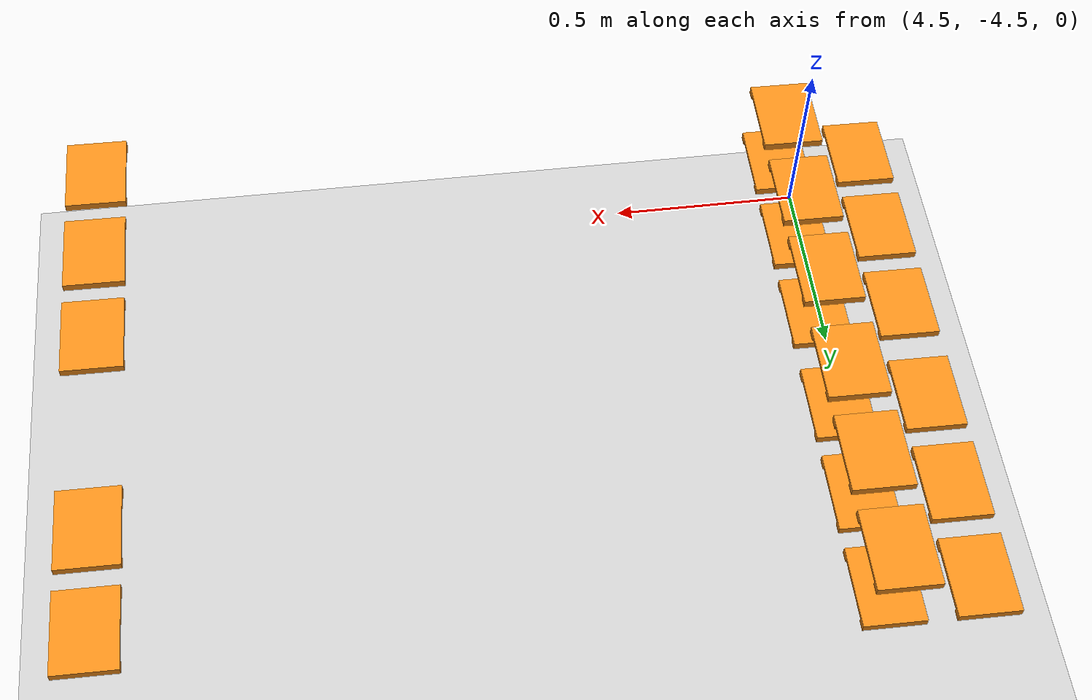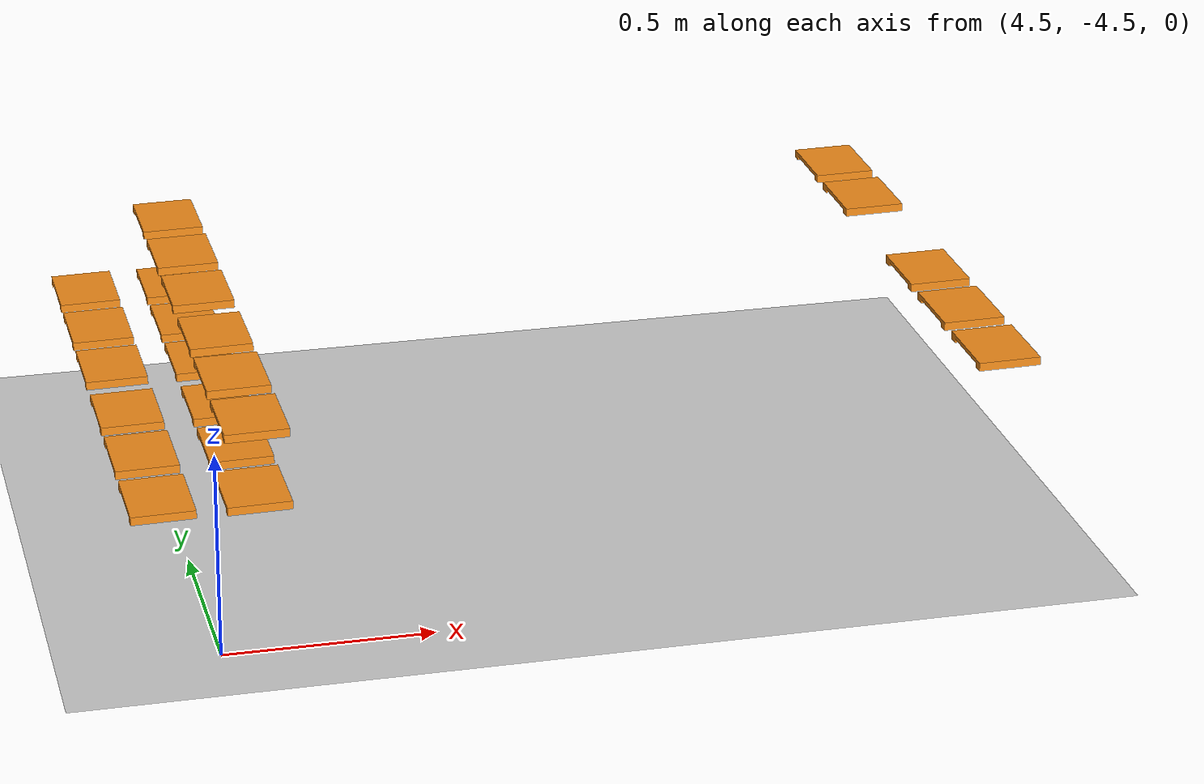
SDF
<sdf version="1.7">
 <world name="default">
  <model name="ground_plane">
   <static>1</static>
   <link name="link">
    <collision name="collision">
     <geometry><plane><normal>0 0 1</normal><size>100 100</size></plane></geometry>
     <surface>
      <contact><collide_bitmask>65535</collide_bitmask></contact>
      <friction><ode><mu>1</mu><mu2>1</mu2></ode></friction>
     </surface>
    </collision>
    <visual name="visual">
     <cast_shadows>0</cast_shadows>
     <geometry><plane><normal>0 0 1</normal><size>100 100</size></plane></geometry>
     <material>
      <script><uri>file://media/materials/scripts/gazebo.material</uri><name>Gazebo/Grey</name></script>
     </material>
    </visual>
   </link>
  </model>
  <model name="pallet_265">
   <pose>4.60365 -3.088 0.511036 -3e-06 -0.012382 5e-06</pose>
   <link name="link">
    <inertial>
     <pose>0 0 0 0 -0 1.571</pose>
     <inertia>
      <ixx>0.00220983</ixx>
      <ixy>0</ixy>
      <ixz>0</ixz>
      <iyy>0.00128087</iyy>
      <iyz>0</iyz>
      <izz>0.00244903</izz>
     </inertia>
     <mass>0.01</mass>
    </inertial>
    <visual name="visual1">
     <cast_shadows>0</cast_shadows>
     <geometry><mesh><uri>model://pallet/meshes/pallet.stl</uri></mesh></geometry>
     <material>
      <script><uri>file://media/materials/scripts/gazebo.material</uri><name>Gazebo/Orange</name></script>
      <shader type="pixel"><normal_map>__default__</normal_map></shader>
      <emissive>0 0 0 1</emissive>
     </material>
     <pose>0 0 -0 0 -0 1.571</pose>
    </visual>
    <collision name="collision_0">
     <pose>0 0 0 0 -0 1.571</pose>
     <geometry><mesh><uri>model://pallet/meshes/pallet.stl</uri></mesh></geometry>
     <surface>
      <friction>
       <ode><mu>1</mu><mu2>1</mu2><fdir1>0 0 0</fdir1><slip1>0</slip1><slip2>0</slip2></ode>
       <torsional>
        <coefficient>1</coefficient>
        <patch_radius>0</patch_radius>
        <surface_radius>0</surface_radius>
        <use_patch_radius>1</use_patch_radius>
        <ode><slip>0</slip></ode>
       </torsional>
      </friction>
      <bounce><restitution_coefficient>0</restitution_coefficient><threshold>1e+06</threshold></bounce>
      <contact>
       <collide_without_contact>0</collide_without_contact>
       <collide_without_contact_bitmask>1</collide_without_contact_bitmask>
       <collide_bitmask>1</collide_bitmask>
       <ode>
        <soft_cfm>0</soft_cfm>
        <soft_erp>0.2</soft_erp>
        <kp>1e+13</kp>
        <kd>1</kd>
        <max_vel>0.01</max_vel>
        <min_depth>0</min_depth>
       </ode>
       <bullet>
        <split_impulse>1</split_impulse>
        <split_impulse_penetration_threshold>-0.01</split_impulse_penetration_threshold>
        <soft_cfm>0</soft_cfm>
        <soft_erp>0.2</soft_erp>
        <kp>1e+13</kp>
        <kd>1</kd>
       </bullet>
      </contact>
     </surface>
    </collision>
   </link>
   <static>0</static>
  </model>
  <model name="pallet_266">
   <pose>4.60365 -3.338 0.511033 4.1e-05 -0.012377 6e-06</pose>
   <link name="link">
    <inertial>
     <pose>0 0 0 0 -0 1.571</pose>
     <inertia>
      <ixx>0.00220983</ixx>
      <ixy>0</ixy>
      <ixz>0</ixz>
      <iyy>0.00128087</iyy>
      <iyz>0</iyz>
      <izz>0.00244903</izz>
     </inertia>
     <mass>0.01</mass>
    </inertial>
    <visual name="visual1">
     <cast_shadows>0</cast_shadows>
     <geometry><mesh><uri>model://pallet/meshes/pallet.stl</uri></mesh></geometry>
     <material>
      <script><uri>file://media/materials/scripts/gazebo.material</uri><name>Gazebo/Orange</name></script>
      <shader type="pixel"><normal_map>__default__</normal_map></shader>
      <emissive>0 0 0 1</emissive>
     </material>
     <pose>0 0 -0 0 -0 1.571</pose>
    </visual>
    <collision name="collision_0">
     <pose>0 0 0 0 -0 1.571</pose>
     <geometry><mesh><uri>model://pallet/meshes/pallet.stl</uri></mesh></geometry>
     <surface>
      <friction>
       <ode><mu>1</mu><mu2>1</mu2><fdir1>0 0 0</fdir1><slip1>0</slip1><slip2>0</slip2></ode>
       <torsional>
        <coefficient>1</coefficient>
        <patch_radius>0</patch_radius>
        <surface_radius>0</surface_radius>
        <use_patch_radius>1</use_patch_radius>
        <ode><slip>0</slip></ode>
       </torsional>
      </friction>
      <bounce><restitution_coefficient>0</restitution_coefficient><threshold>1e+06</threshold></bounce>
      <contact>
       <collide_without_contact>0</collide_without_contact>
       <collide_without_contact_bitmask>1</collide_without_contact_bitmask>
       <collide_bitmask>1</collide_bitmask>
       <ode>
        <soft_cfm>0</soft_cfm>
        <soft_erp>0.2</soft_erp>
        <kp>1e+13</kp>
        <kd>1</kd>
        <max_vel>0.01</max_vel>
        <min_depth>0</min_depth>
       </ode>
       <bullet>
        <split_impulse>1</split_impulse>
        <split_impulse_penetration_threshold>-0.01</split_impulse_penetration_threshold>
        <soft_cfm>0</soft_cfm>
        <soft_erp>0.2</soft_erp>
        <kp>1e+13</kp>
        <kd>1</kd>
       </bullet>
      </contact>
     </surface>
    </collision>
   </link>
   <static>0</static>
  </model>
  <model name="pallet_267">
   <pose>4.60365 -3.588 0.511032 3.8e-05 -0.012376 4e-06</pose>
   <link name="link">
    <inertial>
     <pose>0 0 0 0 -0 1.571</pose>
     <inertia>
      <ixx>0.00220983</ixx>
      <ixy>0</ixy>
      <ixz>0</ixz>
      <iyy>0.00128087</iyy>
      <iyz>0</iyz>
      <izz>0.00244903</izz>
     </inertia>
     <mass>0.01</mass>
    </inertial>
    <visual name="visual1">
     <cast_shadows>0</cast_shadows>
     <geometry><mesh><uri>model://pallet/meshes/pallet.stl</uri></mesh></geometry>
     <material>
      <script><uri>file://media/materials/scripts/gazebo.material</uri><name>Gazebo/Orange</name></script>
      <shader type="pixel"><normal_map>__default__</normal_map></shader>
      <emissive>0 0 0 1</emissive>
     </material>
     <pose>0 0 -0 0 -0 1.571</pose>
    </visual>
    <collision name="collision_0">
     <pose>0 0 0 0 -0 1.571</pose>
     <geometry><mesh><uri>model://pallet/meshes/pallet.stl</uri></mesh></geometry>
     <surface>
      <friction>
       <ode><mu>1</mu><mu2>1</mu2><fdir1>0 0 0</fdir1><slip1>0</slip1><slip2>0</slip2></ode>
       <torsional>
        <coefficient>1</coefficient>
        <patch_radius>0</patch_radius>
        <surface_radius>0</surface_radius>
        <use_patch_radius>1</use_patch_radius>
        <ode><slip>0</slip></ode>
       </torsional>
      </friction>
      <bounce><restitution_coefficient>0</restitution_coefficient><threshold>1e+06</threshold></bounce>
      <contact>
       <collide_without_contact>0</collide_without_contact>
       <collide_without_contact_bitmask>1</collide_without_contact_bitmask>
       <collide_bitmask>1</collide_bitmask>
       <ode>
        <soft_cfm>0</soft_cfm>
        <soft_erp>0.2</soft_erp>
        <kp>1e+13</kp>
        <kd>1</kd>
        <max_vel>0.01</max_vel>
        <min_depth>0</min_depth>
       </ode>
       <bullet>
        <split_impulse>1</split_impulse>
        <split_impulse_penetration_threshold>-0.01</split_impulse_penetration_threshold>
        <soft_cfm>0</soft_cfm>
        <soft_erp>0.2</soft_erp>
        <kp>1e+13</kp>
        <kd>1</kd>
       </bullet>
      </contact>
     </surface>
    </collision>
   </link>
   <static>0</static>
  </model>
  <model name="pallet_268">
   <pose>4.60365 -3.8625 0.511034 3e-06 -0.012381 2e-06</pose>
   <link name="link">
    <inertial>
     <pose>0 0 0 0 -0 1.571</pose>
     <inertia>
      <ixx>0.00220983</ixx>
      <ixy>0</ixy>
      <ixz>0</ixz>
      <iyy>0.00128087</iyy>
      <iyz>0</iyz>
      <izz>0.00244903</izz>
     </inertia>
     <mass>0.01</mass>
    </inertial>
    <visual name="visual1">
     <cast_shadows>0</cast_shadows>
     <geometry><mesh><uri>model://pallet/meshes/pallet.stl</uri></mesh></geometry>
     <material>
      <script><uri>file://media/materials/scripts/gazebo.material</uri><name>Gazebo/Orange</name></script>
      <shader type="pixel"><normal_map>__default__</normal_map></shader>
      <emissive>0 0 0 1</emissive>
     </material>
     <pose>0 0 -0 0 -0 1.571</pose>
    </visual>
    <collision name="collision_0">
     <pose>0 0 0 0 -0 1.571</pose>
     <geometry><mesh><uri>model://pallet/meshes/pallet.stl</uri></mesh></geometry>
     <surface>
      <friction>
       <ode><mu>1</mu><mu2>1</mu2><fdir1>0 0 0</fdir1><slip1>0</slip1><slip2>0</slip2></ode>
       <torsional>
        <coefficient>1</coefficient>
        <patch_radius>0</patch_radius>
        <surface_radius>0</surface_radius>
        <use_patch_radius>1</use_patch_radius>
        <ode><slip>0</slip></ode>
       </torsional>
      </friction>
      <bounce><restitution_coefficient>0</restitution_coefficient><threshold>1e+06</threshold></bounce>
      <contact>
       <collide_without_contact>0</collide_without_contact>
       <collide_without_contact_bitmask>1</collide_without_contact_bitmask>
       <collide_bitmask>1</collide_bitmask>
       <ode>
        <soft_cfm>0</soft_cfm>
        <soft_erp>0.2</soft_erp>
        <kp>1e+13</kp>
        <kd>1</kd>
        <max_vel>0.01</max_vel>
        <min_depth>0</min_depth>
       </ode>
       <bullet>
        <split_impulse>1</split_impulse>
        <split_impulse_penetration_threshold>-0.01</split_impulse_penetration_threshold>
        <soft_cfm>0</soft_cfm>
        <soft_erp>0.2</soft_erp>
        <kp>1e+13</kp>
        <kd>1</kd>
       </bullet>
      </contact>
     </surface>
    </collision>
   </link>
   <static>0</static>
  </model>
  <model name="pallet_269">
   <pose>4.60365 -4.1125 0.511032 2.7e-05 -0.012376 2e-06</pose>
   <link name="link">
    <inertial>
     <pose>0 0 0 0 -0 1.571</pose>
     <inertia>
      <ixx>0.00220983</ixx>
      <ixy>0</ixy>
      <ixz>0</ixz>
      <iyy>0.00128087</iyy>
      <iyz>0</iyz>
      <izz>0.00244903</izz>
     </inertia>
     <mass>0.01</mass>
    </inertial>
    <visual name="visual1">
     <cast_shadows>0</cast_shadows>
     <geometry><mesh><uri>model://pallet/meshes/pallet.stl</uri></mesh></geometry>
     <material>
      <script><uri>file://media/materials/scripts/gazebo.material</uri><name>Gazebo/Orange</name></script>
      <shader type="pixel"><normal_map>__default__</normal_map></shader>
      <emissive>0 0 0 1</emissive>
     </material>
     <pose>0 0 -0 0 -0 1.571</pose>
    </visual>
    <collision name="collision_0">
     <pose>0 0 0 0 -0 1.571</pose>
     <geometry><mesh><uri>model://pallet/meshes/pallet.stl</uri></mesh></geometry>
     <surface>
      <friction>
       <ode><mu>1</mu><mu2>1</mu2><fdir1>0 0 0</fdir1><slip1>0</slip1><slip2>0</slip2></ode>
       <torsional>
        <coefficient>1</coefficient>
        <patch_radius>0</patch_radius>
        <surface_radius>0</surface_radius>
        <use_patch_radius>1</use_patch_radius>
        <ode><slip>0</slip></ode>
       </torsional>
      </friction>
      <bounce><restitution_coefficient>0</restitution_coefficient><threshold>1e+06</threshold></bounce>
      <contact>
       <collide_without_contact>0</collide_without_contact>
       <collide_without_contact_bitmask>1</collide_without_contact_bitmask>
       <collide_bitmask>1</collide_bitmask>
       <ode>
        <soft_cfm>0</soft_cfm>
        <soft_erp>0.2</soft_erp>
        <kp>1e+13</kp>
        <kd>1</kd>
        <max_vel>0.01</max_vel>
        <min_depth>0</min_depth>
       </ode>
       <bullet>
        <split_impulse>1</split_impulse>
        <split_impulse_penetration_threshold>-0.01</split_impulse_penetration_threshold>
        <soft_cfm>0</soft_cfm>
        <soft_erp>0.2</soft_erp>
        <kp>1e+13</kp>
        <kd>1</kd>
       </bullet>
      </contact>
     </surface>
    </collision>
   </link>
   <static>0</static>
  </model>
  <model name="pallet_270">
   <pose>4.60366 -4.3625 0.511031 2e-05 -0.012377 9e-06</pose>
   <link name="link">
    <inertial>
     <pose>0 0 0 0 -0 1.571</pose>
     <inertia>
      <ixx>0.00220983</ixx>
      <ixy>0</ixy>
      <ixz>0</ixz>
      <iyy>0.00128087</iyy>
      <iyz>0</iyz>
      <izz>0.00244903</izz>
     </inertia>
     <mass>0.01</mass>
    </inertial>
    <visual name="visual1">
     <cast_shadows>0</cast_shadows>
     <geometry><mesh><uri>model://pallet/meshes/pallet.stl</uri></mesh></geometry>
     <material>
      <script><uri>file://media/materials/scripts/gazebo.material</uri><name>Gazebo/Orange</name></script>
      <shader type="pixel"><normal_map>__default__</normal_map></shader>
      <emissive>0 0 0 1</emissive>
     </material>
     <pose>0 0 -0 0 -0 1.571</pose>
    </visual>
    <collision name="collision_0">
     <pose>0 0 0 0 -0 1.571</pose>
     <geometry><mesh><uri>model://pallet/meshes/pallet.stl</uri></mesh></geometry>
     <surface>
      <friction>
       <ode><mu>1</mu><mu2>1</mu2><fdir1>0 0 0</fdir1><slip1>0</slip1><slip2>0</slip2></ode>
       <torsional>
        <coefficient>1</coefficient>
        <patch_radius>0</patch_radius>
        <surface_radius>0</surface_radius>
        <use_patch_radius>1</use_patch_radius>
        <ode><slip>0</slip></ode>
       </torsional>
      </friction>
      <bounce><restitution_coefficient>0</restitution_coefficient><threshold>1e+06</threshold></bounce>
      <contact>
       <collide_without_contact>0</collide_without_contact>
       <collide_without_contact_bitmask>1</collide_without_contact_bitmask>
       <collide_bitmask>1</collide_bitmask>
       <ode>
        <soft_cfm>0</soft_cfm>
        <soft_erp>0.2</soft_erp>
        <kp>1e+13</kp>
        <kd>1</kd>
        <max_vel>0.01</max_vel>
        <min_depth>0</min_depth>
       </ode>
       <bullet>
        <split_impulse>1</split_impulse>
        <split_impulse_penetration_threshold>-0.01</split_impulse_penetration_threshold>
        <soft_cfm>0</soft_cfm>
        <soft_erp>0.2</soft_erp>
        <kp>1e+13</kp>
        <kd>1</kd>
       </bullet>
      </contact>
     </surface>
    </collision>
   </link>
   <static>0</static>
  </model>
  <model name="pallet_289">
   <pose>4.38555 -3.088 0.330971 5e-06 -0.013351 -5e-06</pose>
   <link name="link">
    <inertial>
     <pose>0 0 0 0 -0 1.571</pose>
     <inertia>
      <ixx>0.00220983</ixx>
      <ixy>0</ixy>
      <ixz>0</ixz>
      <iyy>0.00128087</iyy>
      <iyz>0</iyz>
      <izz>0.00244903</izz>
     </inertia>
     <mass>0.01</mass>
    </inertial>
    <visual name="visual1">
     <cast_shadows>0</cast_shadows>
     <geometry><mesh><uri>model://pallet/meshes/pallet.stl</uri></mesh></geometry>
     <material>
      <script><uri>file://media/materials/scripts/gazebo.material</uri><name>Gazebo/Orange</name></script>
      <shader type="pixel"><normal_map>__default__</normal_map></shader>
      <emissive>0 0 0 1</emissive>
     </material>
     <pose>0 0 -0 0 -0 1.571</pose>
    </visual>
    <collision name="collision_0">
     <pose>0 0 0 0 -0 1.571</pose>
     <geometry><mesh><uri>model://pallet/meshes/pallet.stl</uri></mesh></geometry>
     <surface>
      <friction>
       <ode><mu>1</mu><mu2>1</mu2><fdir1>0 0 0</fdir1><slip1>0</slip1><slip2>0</slip2></ode>
       <torsional>
        <coefficient>1</coefficient>
        <patch_radius>0</patch_radius>
        <surface_radius>0</surface_radius>
        <use_patch_radius>1</use_patch_radius>
        <ode><slip>0</slip></ode>
       </torsional>
      </friction>
      <bounce><restitution_coefficient>0</restitution_coefficient><threshold>1e+06</threshold></bounce>
      <contact>
       <collide_without_contact>0</collide_without_contact>
       <collide_without_contact_bitmask>1</collide_without_contact_bitmask>
       <collide_bitmask>1</collide_bitmask>
       <ode>
        <soft_cfm>0</soft_cfm>
        <soft_erp>0.2</soft_erp>
        <kp>1e+13</kp>
        <kd>1</kd>
        <max_vel>0.01</max_vel>
        <min_depth>0</min_depth>
       </ode>
       <bullet>
        <split_impulse>1</split_impulse>
        <split_impulse_penetration_threshold>-0.01</split_impulse_penetration_threshold>
        <soft_cfm>0</soft_cfm>
        <soft_erp>0.2</soft_erp>
        <kp>1e+13</kp>
        <kd>1</kd>
       </bullet>
      </contact>
     </surface>
    </collision>
   </link>
   <static>0</static>
  </model>
  <model name="pallet_290">
   <pose>4.38555 -3.338 0.330969 3.9e-05 -0.013348 3e-06</pose>
   <link name="link">
    <inertial>
     <pose>0 0 0 0 -0 1.571</pose>
     <inertia>
      <ixx>0.00220983</ixx>
      <ixy>0</ixy>
      <ixz>0</ixz>
      <iyy>0.00128087</iyy>
      <iyz>0</iyz>
      <izz>0.00244903</izz>
     </inertia>
     <mass>0.01</mass>
    </inertial>
    <visual name="visual1">
     <cast_shadows>0</cast_shadows>
     <geometry><mesh><uri>model://pallet/meshes/pallet.stl</uri></mesh></geometry>
     <material>
      <script><uri>file://media/materials/scripts/gazebo.material</uri><name>Gazebo/Orange</name></script>
      <shader type="pixel"><normal_map>__default__</normal_map></shader>
      <emissive>0 0 0 1</emissive>
     </material>
     <pose>0 0 -0 0 -0 1.571</pose>
    </visual>
    <collision name="collision_0">
     <pose>0 0 0 0 -0 1.571</pose>
     <geometry><mesh><uri>model://pallet/meshes/pallet.stl</uri></mesh></geometry>
     <surface>
      <friction>
       <ode><mu>1</mu><mu2>1</mu2><fdir1>0 0 0</fdir1><slip1>0</slip1><slip2>0</slip2></ode>
       <torsional>
        <coefficient>1</coefficient>
        <patch_radius>0</patch_radius>
        <surface_radius>0</surface_radius>
        <use_patch_radius>1</use_patch_radius>
        <ode><slip>0</slip></ode>
       </torsional>
      </friction>
      <bounce><restitution_coefficient>0</restitution_coefficient><threshold>1e+06</threshold></bounce>
      <contact>
       <collide_without_contact>0</collide_without_contact>
       <collide_without_contact_bitmask>1</collide_without_contact_bitmask>
       <collide_bitmask>1</collide_bitmask>
       <ode>
        <soft_cfm>0</soft_cfm>
        <soft_erp>0.2</soft_erp>
        <kp>1e+13</kp>
        <kd>1</kd>
        <max_vel>0.01</max_vel>
        <min_depth>0</min_depth>
       </ode>
       <bullet>
        <split_impulse>1</split_impulse>
        <split_impulse_penetration_threshold>-0.01</split_impulse_penetration_threshold>
        <soft_cfm>0</soft_cfm>
        <soft_erp>0.2</soft_erp>
        <kp>1e+13</kp>
        <kd>1</kd>
       </bullet>
      </contact>
     </surface>
    </collision>
   </link>
   <static>0</static>
  </model>
  <model name="pallet_291">
   <pose>4.38555 -3.588 0.330968 4.8e-05 -0.013348 5e-06</pose>
   <link name="link">
    <inertial>
     <pose>0 0 0 0 -0 1.571</pose>
     <inertia>
      <ixx>0.00220983</ixx>
      <ixy>0</ixy>
      <ixz>0</ixz>
      <iyy>0.00128087</iyy>
      <iyz>0</iyz>
      <izz>0.00244903</izz>
     </inertia>
     <mass>0.01</mass>
    </inertial>
    <visual name="visual1">
     <cast_shadows>0</cast_shadows>
     <geometry><mesh><uri>model://pallet/meshes/pallet.stl</uri></mesh></geometry>
     <material>
      <script><uri>file://media/materials/scripts/gazebo.material</uri><name>Gazebo/Orange</name></script>
      <shader type="pixel"><normal_map>__default__</normal_map></shader>
      <emissive>0 0 0 1</emissive>
     </material>
     <pose>0 0 -0 0 -0 1.571</pose>
    </visual>
    <collision name="collision_0">
     <pose>0 0 0 0 -0 1.571</pose>
     <geometry><mesh><uri>model://pallet/meshes/pallet.stl</uri></mesh></geometry>
     <surface>
      <friction>
       <ode><mu>1</mu><mu2>1</mu2><fdir1>0 0 0</fdir1><slip1>0</slip1><slip2>0</slip2></ode>
       <torsional>
        <coefficient>1</coefficient>
        <patch_radius>0</patch_radius>
        <surface_radius>0</surface_radius>
        <use_patch_radius>1</use_patch_radius>
        <ode><slip>0</slip></ode>
       </torsional>
      </friction>
      <bounce><restitution_coefficient>0</restitution_coefficient><threshold>1e+06</threshold></bounce>
      <contact>
       <collide_without_contact>0</collide_without_contact>
       <collide_without_contact_bitmask>1</collide_without_contact_bitmask>
       <collide_bitmask>1</collide_bitmask>
       <ode>
        <soft_cfm>0</soft_cfm>
        <soft_erp>0.2</soft_erp>
        <kp>1e+13</kp>
        <kd>1</kd>
        <max_vel>0.01</max_vel>
        <min_depth>0</min_depth>
       </ode>
       <bullet>
        <split_impulse>1</split_impulse>
        <split_impulse_penetration_threshold>-0.01</split_impulse_penetration_threshold>
        <soft_cfm>0</soft_cfm>
        <soft_erp>0.2</soft_erp>
        <kp>1e+13</kp>
        <kd>1</kd>
       </bullet>
      </contact>
     </surface>
    </collision>
   </link>
   <static>0</static>
  </model>
  <model name="pallet_292">
   <pose>4.38556 -3.8625 0.33097 6e-06 -0.013355 3e-06</pose>
   <link name="link">
    <inertial>
     <pose>0 0 0 0 -0 1.571</pose>
     <inertia>
      <ixx>0.00220983</ixx>
      <ixy>0</ixy>
      <ixz>0</ixz>
      <iyy>0.00128087</iyy>
      <iyz>0</iyz>
      <izz>0.00244903</izz>
     </inertia>
     <mass>0.01</mass>
    </inertial>
    <visual name="visual1">
     <cast_shadows>0</cast_shadows>
     <geometry><mesh><uri>model://pallet/meshes/pallet.stl</uri></mesh></geometry>
     <material>
      <script><uri>file://media/materials/scripts/gazebo.material</uri><name>Gazebo/Orange</name></script>
      <shader type="pixel"><normal_map>__default__</normal_map></shader>
      <emissive>0 0 0 1</emissive>
     </material>
     <pose>0 0 -0 0 -0 1.571</pose>
    </visual>
    <collision name="collision_0">
     <pose>0 0 0 0 -0 1.571</pose>
     <geometry><mesh><uri>model://pallet/meshes/pallet.stl</uri></mesh></geometry>
     <surface>
      <friction>
       <ode><mu>1</mu><mu2>1</mu2><fdir1>0 0 0</fdir1><slip1>0</slip1><slip2>0</slip2></ode>
       <torsional>
        <coefficient>1</coefficient>
        <patch_radius>0</patch_radius>
        <surface_radius>0</surface_radius>
        <use_patch_radius>1</use_patch_radius>
        <ode><slip>0</slip></ode>
       </torsional>
      </friction>
      <bounce><restitution_coefficient>0</restitution_coefficient><threshold>1e+06</threshold></bounce>
      <contact>
       <collide_without_contact>0</collide_without_contact>
       <collide_without_contact_bitmask>1</collide_without_contact_bitmask>
       <collide_bitmask>1</collide_bitmask>
       <ode>
        <soft_cfm>0</soft_cfm>
        <soft_erp>0.2</soft_erp>
        <kp>1e+13</kp>
        <kd>1</kd>
        <max_vel>0.01</max_vel>
        <min_depth>0</min_depth>
       </ode>
       <bullet>
        <split_impulse>1</split_impulse>
        <split_impulse_penetration_threshold>-0.01</split_impulse_penetration_threshold>
        <soft_cfm>0</soft_cfm>
        <soft_erp>0.2</soft_erp>
        <kp>1e+13</kp>
        <kd>1</kd>
       </bullet>
      </contact>
     </surface>
    </collision>
   </link>
   <static>0</static>
  </model>
  <model name="pallet_293">
   <pose>4.38556 -4.1125 0.330968 3e-05 -0.013348 5e-06</pose>
   <link name="link">
    <inertial>
     <pose>0 0 0 0 -0 1.571</pose>
     <inertia>
      <ixx>0.00220983</ixx>
      <ixy>0</ixy>
      <ixz>0</ixz>
      <iyy>0.00128087</iyy>
      <iyz>0</iyz>
      <izz>0.00244903</izz>
     </inertia>
     <mass>0.01</mass>
    </inertial>
    <visual name="visual1">
     <cast_shadows>0</cast_shadows>
     <geometry><mesh><uri>model://pallet/meshes/pallet.stl</uri></mesh></geometry>
     <material>
      <script><uri>file://media/materials/scripts/gazebo.material</uri><name>Gazebo/Orange</name></script>
      <shader type="pixel"><normal_map>__default__</normal_map></shader>
      <emissive>0 0 0 1</emissive>
     </material>
     <pose>0 0 -0 0 -0 1.571</pose>
    </visual>
    <collision name="collision_0">
     <pose>0 0 0 0 -0 1.571</pose>
     <geometry><mesh><uri>model://pallet/meshes/pallet.stl</uri></mesh></geometry>
     <surface>
      <friction>
       <ode><mu>1</mu><mu2>1</mu2><fdir1>0 0 0</fdir1><slip1>0</slip1><slip2>0</slip2></ode>
       <torsional>
        <coefficient>1</coefficient>
        <patch_radius>0</patch_radius>
        <surface_radius>0</surface_radius>
        <use_patch_radius>1</use_patch_radius>
        <ode><slip>0</slip></ode>
       </torsional>
      </friction>
      <bounce><restitution_coefficient>0</restitution_coefficient><threshold>1e+06</threshold></bounce>
      <contact>
       <collide_without_contact>0</collide_without_contact>
       <collide_without_contact_bitmask>1</collide_without_contact_bitmask>
       <collide_bitmask>1</collide_bitmask>
       <ode>
        <soft_cfm>0</soft_cfm>
        <soft_erp>0.2</soft_erp>
        <kp>1e+13</kp>
        <kd>1</kd>
        <max_vel>0.01</max_vel>
        <min_depth>0</min_depth>
       </ode>
       <bullet>
        <split_impulse>1</split_impulse>
        <split_impulse_penetration_threshold>-0.01</split_impulse_penetration_threshold>
        <soft_cfm>0</soft_cfm>
        <soft_erp>0.2</soft_erp>
        <kp>1e+13</kp>
        <kd>1</kd>
       </bullet>
      </contact>
     </surface>
    </collision>
   </link>
   <static>0</static>
  </model>
  <model name="pallet_294">
   <pose>4.38556 -4.3625 0.330967 2.8e-05 -0.013348 7e-06</pose>
   <link name="link">
    <inertial>
     <pose>0 0 0 0 -0 1.571</pose>
     <inertia>
      <ixx>0.00220983</ixx>
      <ixy>0</ixy>
      <ixz>0</ixz>
      <iyy>0.00128087</iyy>
      <iyz>0</iyz>
      <izz>0.00244903</izz>
     </inertia>
     <mass>0.01</mass>
    </inertial>
    <visual name="visual1">
     <cast_shadows>0</cast_shadows>
     <geometry><mesh><uri>model://pallet/meshes/pallet.stl</uri></mesh></geometry>
     <material>
      <script><uri>file://media/materials/scripts/gazebo.material</uri><name>Gazebo/Orange</name></script>
      <shader type="pixel"><normal_map>__default__</normal_map></shader>
      <emissive>0 0 0 1</emissive>
     </material>
     <pose>0 0 -0 0 -0 1.571</pose>
    </visual>
    <collision name="collision_0">
     <pose>0 0 0 0 -0 1.571</pose>
     <geometry><mesh><uri>model://pallet/meshes/pallet.stl</uri></mesh></geometry>
     <surface>
      <friction>
       <ode><mu>1</mu><mu2>1</mu2><fdir1>0 0 0</fdir1><slip1>0</slip1><slip2>0</slip2></ode>
       <torsional>
        <coefficient>1</coefficient>
        <patch_radius>0</patch_radius>
        <surface_radius>0</surface_radius>
        <use_patch_radius>1</use_patch_radius>
        <ode><slip>0</slip></ode>
       </torsional>
      </friction>
      <bounce><restitution_coefficient>0</restitution_coefficient><threshold>1e+06</threshold></bounce>
      <contact>
       <collide_without_contact>0</collide_without_contact>
       <collide_without_contact_bitmask>1</collide_without_contact_bitmask>
       <collide_bitmask>1</collide_bitmask>
       <ode>
        <soft_cfm>0</soft_cfm>
        <soft_erp>0.2</soft_erp>
        <kp>1e+13</kp>
        <kd>1</kd>
        <max_vel>0.01</max_vel>
        <min_depth>0</min_depth>
       </ode>
       <bullet>
        <split_impulse>1</split_impulse>
        <split_impulse_penetration_threshold>-0.01</split_impulse_penetration_threshold>
        <soft_cfm>0</soft_cfm>
        <soft_erp>0.2</soft_erp>
        <kp>1e+13</kp>
        <kd>1</kd>
       </bullet>
      </contact>
     </surface>
    </collision>
   </link>
   <static>0</static>
  </model>
  <model name="pallet_301">
   <pose>4.60588 -3.088 0.331044 3e-06 -0.012384 -4e-06</pose>
   <link name="link">
    <inertial>
     <pose>0 0 0 0 -0 1.571</pose>
     <inertia>
      <ixx>0.00220983</ixx>
      <ixy>0</ixy>
      <ixz>0</ixz>
      <iyy>0.00128087</iyy>
      <iyz>0</iyz>
      <izz>0.00244903</izz>
     </inertia>
     <mass>0.01</mass>
    </inertial>
    <visual name="visual1">
     <cast_shadows>0</cast_shadows>
     <geometry><mesh><uri>model://pallet/meshes/pallet.stl</uri></mesh></geometry>
     <material>
      <script><uri>file://media/materials/scripts/gazebo.material</uri><name>Gazebo/Orange</name></script>
      <shader type="pixel"><normal_map>__default__</normal_map></shader>
      <emissive>0 0 0 1</emissive>
     </material>
     <pose>0 0 -0 0 -0 1.571</pose>
    </visual>
    <collision name="collision_0">
     <pose>0 0 0 0 -0 1.571</pose>
     <geometry><mesh><uri>model://pallet/meshes/pallet.stl</uri></mesh></geometry>
     <surface>
      <friction>
       <ode><mu>1</mu><mu2>1</mu2><fdir1>0 0 0</fdir1><slip1>0</slip1><slip2>0</slip2></ode>
       <torsional>
        <coefficient>1</coefficient>
        <patch_radius>0</patch_radius>
        <surface_radius>0</surface_radius>
        <use_patch_radius>1</use_patch_radius>
        <ode><slip>0</slip></ode>
       </torsional>
      </friction>
      <bounce><restitution_coefficient>0</restitution_coefficient><threshold>1e+06</threshold></bounce>
      <contact>
       <collide_without_contact>0</collide_without_contact>
       <collide_without_contact_bitmask>1</collide_without_contact_bitmask>
       <collide_bitmask>1</collide_bitmask>
       <ode>
        <soft_cfm>0</soft_cfm>
        <soft_erp>0.2</soft_erp>
        <kp>1e+13</kp>
        <kd>1</kd>
        <max_vel>0.01</max_vel>
        <min_depth>0</min_depth>
       </ode>
       <bullet>
        <split_impulse>1</split_impulse>
        <split_impulse_penetration_threshold>-0.01</split_impulse_penetration_threshold>
        <soft_cfm>0</soft_cfm>
        <soft_erp>0.2</soft_erp>
        <kp>1e+13</kp>
        <kd>1</kd>
       </bullet>
      </contact>
     </surface>
    </collision>
   </link>
   <static>0</static>
  </model>
  <model name="pallet_302">
   <pose>4.60588 -3.338 0.331047 3.9e-05 -0.012378 8e-06</pose>
   <link name="link">
    <inertial>
     <pose>0 0 0 0 -0 1.571</pose>
     <inertia>
      <ixx>0.00220983</ixx>
      <ixy>0</ixy>
      <ixz>0</ixz>
      <iyy>0.00128087</iyy>
      <iyz>0</iyz>
      <izz>0.00244903</izz>
     </inertia>
     <mass>0.01</mass>
    </inertial>
    <visual name="visual1">
     <cast_shadows>0</cast_shadows>
     <geometry><mesh><uri>model://pallet/meshes/pallet.stl</uri></mesh></geometry>
     <material>
      <script><uri>file://media/materials/scripts/gazebo.material</uri><name>Gazebo/Orange</name></script>
      <shader type="pixel"><normal_map>__default__</normal_map></shader>
      <emissive>0 0 0 1</emissive>
     </material>
     <pose>0 0 -0 0 -0 1.571</pose>
    </visual>
    <collision name="collision_0">
     <pose>0 0 0 0 -0 1.571</pose>
     <geometry><mesh><uri>model://pallet/meshes/pallet.stl</uri></mesh></geometry>
     <surface>
      <friction>
       <ode><mu>1</mu><mu2>1</mu2><fdir1>0 0 0</fdir1><slip1>0</slip1><slip2>0</slip2></ode>
       <torsional>
        <coefficient>1</coefficient>
        <patch_radius>0</patch_radius>
        <surface_radius>0</surface_radius>
        <use_patch_radius>1</use_patch_radius>
        <ode><slip>0</slip></ode>
       </torsional>
      </friction>
      <bounce><restitution_coefficient>0</restitution_coefficient><threshold>1e+06</threshold></bounce>
      <contact>
       <collide_without_contact>0</collide_without_contact>
       <collide_without_contact_bitmask>1</collide_without_contact_bitmask>
       <collide_bitmask>1</collide_bitmask>
       <ode>
        <soft_cfm>0</soft_cfm>
        <soft_erp>0.2</soft_erp>
        <kp>1e+13</kp>
        <kd>1</kd>
        <max_vel>0.01</max_vel>
        <min_depth>0</min_depth>
       </ode>
       <bullet>
        <split_impulse>1</split_impulse>
        <split_impulse_penetration_threshold>-0.01</split_impulse_penetration_threshold>
        <soft_cfm>0</soft_cfm>
        <soft_erp>0.2</soft_erp>
        <kp>1e+13</kp>
        <kd>1</kd>
       </bullet>
      </contact>
     </surface>
    </collision>
   </link>
   <static>0</static>
  </model>
  <model name="pallet_303">
   <pose>4.60588 -3.588 0.331046 4.2e-05 -0.012379 5e-06</pose>
   <link name="link">
    <inertial>
     <pose>0 0 0 0 -0 1.571</pose>
     <inertia>
      <ixx>0.00220983</ixx>
      <ixy>0</ixy>
      <ixz>0</ixz>
      <iyy>0.00128087</iyy>
      <iyz>0</iyz>
      <izz>0.00244903</izz>
     </inertia>
     <mass>0.01</mass>
    </inertial>
    <visual name="visual1">
     <cast_shadows>0</cast_shadows>
     <geometry><mesh><uri>model://pallet/meshes/pallet.stl</uri></mesh></geometry>
     <material>
      <script><uri>file://media/materials/scripts/gazebo.material</uri><name>Gazebo/Orange</name></script>
      <shader type="pixel"><normal_map>__default__</normal_map></shader>
      <emissive>0 0 0 1</emissive>
     </material>
     <pose>0 0 -0 0 -0 1.571</pose>
    </visual>
    <collision name="collision_0">
     <pose>0 0 0 0 -0 1.571</pose>
     <geometry><mesh><uri>model://pallet/meshes/pallet.stl</uri></mesh></geometry>
     <surface>
      <friction>
       <ode><mu>1</mu><mu2>1</mu2><fdir1>0 0 0</fdir1><slip1>0</slip1><slip2>0</slip2></ode>
       <torsional>
        <coefficient>1</coefficient>
        <patch_radius>0</patch_radius>
        <surface_radius>0</surface_radius>
        <use_patch_radius>1</use_patch_radius>
        <ode><slip>0</slip></ode>
       </torsional>
      </friction>
      <bounce><restitution_coefficient>0</restitution_coefficient><threshold>1e+06</threshold></bounce>
      <contact>
       <collide_without_contact>0</collide_without_contact>
       <collide_without_contact_bitmask>1</collide_without_contact_bitmask>
       <collide_bitmask>1</collide_bitmask>
       <ode>
        <soft_cfm>0</soft_cfm>
        <soft_erp>0.2</soft_erp>
        <kp>1e+13</kp>
        <kd>1</kd>
        <max_vel>0.01</max_vel>
        <min_depth>0</min_depth>
       </ode>
       <bullet>
        <split_impulse>1</split_impulse>
        <split_impulse_penetration_threshold>-0.01</split_impulse_penetration_threshold>
        <soft_cfm>0</soft_cfm>
        <soft_erp>0.2</soft_erp>
        <kp>1e+13</kp>
        <kd>1</kd>
       </bullet>
      </contact>
     </surface>
    </collision>
   </link>
   <static>0</static>
  </model>
  <model name="pallet_304">
   <pose>4.60588 -3.8625 0.331047 1e-05 -0.012376 5e-06</pose>
   <link name="link">
    <inertial>
     <pose>0 0 0 0 -0 1.571</pose>
     <inertia>
      <ixx>0.00220983</ixx>
      <ixy>0</ixy>
      <ixz>0</ixz>
      <iyy>0.00128087</iyy>
      <iyz>0</iyz>
      <izz>0.00244903</izz>
     </inertia>
     <mass>0.01</mass>
    </inertial>
    <visual name="visual1">
     <cast_shadows>0</cast_shadows>
     <geometry><mesh><uri>model://pallet/meshes/pallet.stl</uri></mesh></geometry>
     <material>
      <script><uri>file://media/materials/scripts/gazebo.material</uri><name>Gazebo/Orange</name></script>
      <shader type="pixel"><normal_map>__default__</normal_map></shader>
      <emissive>0 0 0 1</emissive>
     </material>
     <pose>0 0 -0 0 -0 1.571</pose>
    </visual>
    <collision name="collision_0">
     <pose>0 0 0 0 -0 1.571</pose>
     <geometry><mesh><uri>model://pallet/meshes/pallet.stl</uri></mesh></geometry>
     <surface>
      <friction>
       <ode><mu>1</mu><mu2>1</mu2><fdir1>0 0 0</fdir1><slip1>0</slip1><slip2>0</slip2></ode>
       <torsional>
        <coefficient>1</coefficient>
        <patch_radius>0</patch_radius>
        <surface_radius>0</surface_radius>
        <use_patch_radius>1</use_patch_radius>
        <ode><slip>0</slip></ode>
       </torsional>
      </friction>
      <bounce><restitution_coefficient>0</restitution_coefficient><threshold>1e+06</threshold></bounce>
      <contact>
       <collide_without_contact>0</collide_without_contact>
       <collide_without_contact_bitmask>1</collide_without_contact_bitmask>
       <collide_bitmask>1</collide_bitmask>
       <ode>
        <soft_cfm>0</soft_cfm>
        <soft_erp>0.2</soft_erp>
        <kp>1e+13</kp>
        <kd>1</kd>
        <max_vel>0.01</max_vel>
        <min_depth>0</min_depth>
       </ode>
       <bullet>
        <split_impulse>1</split_impulse>
        <split_impulse_penetration_threshold>-0.01</split_impulse_penetration_threshold>
        <soft_cfm>0</soft_cfm>
        <soft_erp>0.2</soft_erp>
        <kp>1e+13</kp>
        <kd>1</kd>
       </bullet>
      </contact>
     </surface>
    </collision>
   </link>
   <static>0</static>
  </model>
  <model name="pallet_305">
   <pose>4.60588 -4.1125 0.331046 2.2e-05 -0.012376 8e-06</pose>
   <link name="link">
    <inertial>
     <pose>0 0 0 0 -0 1.571</pose>
     <inertia>
      <ixx>0.00220983</ixx>
      <ixy>0</ixy>
      <ixz>0</ixz>
      <iyy>0.00128087</iyy>
      <iyz>0</iyz>
      <izz>0.00244903</izz>
     </inertia>
     <mass>0.01</mass>
    </inertial>
    <visual name="visual1">
     <cast_shadows>0</cast_shadows>
     <geometry><mesh><uri>model://pallet/meshes/pallet.stl</uri></mesh></geometry>
     <material>
      <script><uri>file://media/materials/scripts/gazebo.material</uri><name>Gazebo/Orange</name></script>
      <shader type="pixel"><normal_map>__default__</normal_map></shader>
      <emissive>0 0 0 1</emissive>
     </material>
     <pose>0 0 -0 0 -0 1.571</pose>
    </visual>
    <collision name="collision_0">
     <pose>0 0 0 0 -0 1.571</pose>
     <geometry><mesh><uri>model://pallet/meshes/pallet.stl</uri></mesh></geometry>
     <surface>
      <friction>
       <ode><mu>1</mu><mu2>1</mu2><fdir1>0 0 0</fdir1><slip1>0</slip1><slip2>0</slip2></ode>
       <torsional>
        <coefficient>1</coefficient>
        <patch_radius>0</patch_radius>
        <surface_radius>0</surface_radius>
        <use_patch_radius>1</use_patch_radius>
        <ode><slip>0</slip></ode>
       </torsional>
      </friction>
      <bounce><restitution_coefficient>0</restitution_coefficient><threshold>1e+06</threshold></bounce>
      <contact>
       <collide_without_contact>0</collide_without_contact>
       <collide_without_contact_bitmask>1</collide_without_contact_bitmask>
       <collide_bitmask>1</collide_bitmask>
       <ode>
        <soft_cfm>0</soft_cfm>
        <soft_erp>0.2</soft_erp>
        <kp>1e+13</kp>
        <kd>1</kd>
        <max_vel>0.01</max_vel>
        <min_depth>0</min_depth>
       </ode>
       <bullet>
        <split_impulse>1</split_impulse>
        <split_impulse_penetration_threshold>-0.01</split_impulse_penetration_threshold>
        <soft_cfm>0</soft_cfm>
        <soft_erp>0.2</soft_erp>
        <kp>1e+13</kp>
        <kd>1</kd>
       </bullet>
      </contact>
     </surface>
    </collision>
   </link>
   <static>0</static>
  </model>
  <model name="pallet_306">
   <pose>4.60588 -4.3625 0.331045 2.6e-05 -0.012376 8e-06</pose>
   <link name="link">
    <inertial>
     <pose>0 0 0 0 -0 1.571</pose>
     <inertia>
      <ixx>0.00220983</ixx>
      <ixy>0</ixy>
      <ixz>0</ixz>
      <iyy>0.00128087</iyy>
      <iyz>0</iyz>
      <izz>0.00244903</izz>
     </inertia>
     <mass>0.01</mass>
    </inertial>
    <visual name="visual1">
     <cast_shadows>0</cast_shadows>
     <geometry><mesh><uri>model://pallet/meshes/pallet.stl</uri></mesh></geometry>
     <material>
      <script><uri>file://media/materials/scripts/gazebo.material</uri><name>Gazebo/Orange</name></script>
      <shader type="pixel"><normal_map>__default__</normal_map></shader>
      <emissive>0 0 0 1</emissive>
     </material>
     <pose>0 0 -0 0 -0 1.571</pose>
    </visual>
    <collision name="collision_0">
     <pose>0 0 0 0 -0 1.571</pose>
     <geometry><mesh><uri>model://pallet/meshes/pallet.stl</uri></mesh></geometry>
     <surface>
      <friction>
       <ode><mu>1</mu><mu2>1</mu2><fdir1>0 0 0</fdir1><slip1>0</slip1><slip2>0</slip2></ode>
       <torsional>
        <coefficient>1</coefficient>
        <patch_radius>0</patch_radius>
        <surface_radius>0</surface_radius>
        <use_patch_radius>1</use_patch_radius>
        <ode><slip>0</slip></ode>
       </torsional>
      </friction>
      <bounce><restitution_coefficient>0</restitution_coefficient><threshold>1e+06</threshold></bounce>
      <contact>
       <collide_without_contact>0</collide_without_contact>
       <collide_without_contact_bitmask>1</collide_without_contact_bitmask>
       <collide_bitmask>1</collide_bitmask>
       <ode>
        <soft_cfm>0</soft_cfm>
        <soft_erp>0.2</soft_erp>
        <kp>1e+13</kp>
        <kd>1</kd>
        <max_vel>0.01</max_vel>
        <min_depth>0</min_depth>
       </ode>
       <bullet>
        <split_impulse>1</split_impulse>
        <split_impulse_penetration_threshold>-0.01</split_impulse_penetration_threshold>
        <soft_cfm>0</soft_cfm>
        <soft_erp>0.2</soft_erp>
        <kp>1e+13</kp>
        <kd>1</kd>
       </bullet>
      </contact>
     </surface>
    </collision>
   </link>
   <static>0</static>
  </model>
  <model name="pallet_337">
   <pose>6.38324 -3.088 0.510967 3e-06 -0.013161 0</pose>
   <link name="link">
    <inertial>
     <pose>0 0 0 0 -0 1.571</pose>
     <inertia>
      <ixx>0.00220983</ixx>
      <ixy>0</ixy>
      <ixz>0</ixz>
      <iyy>0.00128087</iyy>
      <iyz>0</iyz>
      <izz>0.00244903</izz>
     </inertia>
     <mass>0.01</mass>
    </inertial>
    <visual name="visual1">
     <cast_shadows>0</cast_shadows>
     <geometry><mesh><uri>model://pallet/meshes/pallet.stl</uri></mesh></geometry>
     <material>
      <script><uri>file://media/materials/scripts/gazebo.material</uri><name>Gazebo/Orange</name></script>
      <shader type="pixel"><normal_map>__default__</normal_map></shader>
      <emissive>0 0 0 1</emissive>
     </material>
     <pose>0 0 -0 0 -0 1.571</pose>
    </visual>
    <collision name="collision_0">
     <pose>0 0 0 0 -0 1.571</pose>
     <geometry><mesh><uri>model://pallet/meshes/pallet.stl</uri></mesh></geometry>
     <surface>
      <friction>
       <ode><mu>1</mu><mu2>1</mu2><fdir1>0 0 0</fdir1><slip1>0</slip1><slip2>0</slip2></ode>
       <torsional>
        <coefficient>1</coefficient>
        <patch_radius>0</patch_radius>
        <surface_radius>0</surface_radius>
        <use_patch_radius>1</use_patch_radius>
        <ode><slip>0</slip></ode>
       </torsional>
      </friction>
      <bounce><restitution_coefficient>0</restitution_coefficient><threshold>1e+06</threshold></bounce>
      <contact>
       <collide_without_contact>0</collide_without_contact>
       <collide_without_contact_bitmask>1</collide_without_contact_bitmask>
       <collide_bitmask>1</collide_bitmask>
       <ode>
        <soft_cfm>0</soft_cfm>
        <soft_erp>0.2</soft_erp>
        <kp>1e+13</kp>
        <kd>1</kd>
        <max_vel>0.01</max_vel>
        <min_depth>0</min_depth>
       </ode>
       <bullet>
        <split_impulse>1</split_impulse>
        <split_impulse_penetration_threshold>-0.01</split_impulse_penetration_threshold>
        <soft_cfm>0</soft_cfm>
        <soft_erp>0.2</soft_erp>
        <kp>1e+13</kp>
        <kd>1</kd>
       </bullet>
      </contact>
     </surface>
    </collision>
   </link>
   <static>0</static>
  </model>
  <model name="pallet_338">
   <pose>6.38324 -3.338 0.51097 3.6e-05 -0.013161 5e-06</pose>
   <link name="link">
    <inertial>
     <pose>0 0 0 0 -0 1.571</pose>
     <inertia>
      <ixx>0.00220983</ixx>
      <ixy>0</ixy>
      <ixz>0</ixz>
      <iyy>0.00128087</iyy>
      <iyz>0</iyz>
      <izz>0.00244903</izz>
     </inertia>
     <mass>0.01</mass>
    </inertial>
    <visual name="visual1">
     <cast_shadows>0</cast_shadows>
     <geometry><mesh><uri>model://pallet/meshes/pallet.stl</uri></mesh></geometry>
     <material>
      <script><uri>file://media/materials/scripts/gazebo.material</uri><name>Gazebo/Orange</name></script>
      <shader type="pixel"><normal_map>__default__</normal_map></shader>
      <emissive>0 0 0 1</emissive>
     </material>
     <pose>0 0 -0 0 -0 1.571</pose>
    </visual>
    <collision name="collision_0">
     <pose>0 0 0 0 -0 1.571</pose>
     <geometry><mesh><uri>model://pallet/meshes/pallet.stl</uri></mesh></geometry>
     <surface>
      <friction>
       <ode><mu>1</mu><mu2>1</mu2><fdir1>0 0 0</fdir1><slip1>0</slip1><slip2>0</slip2></ode>
       <torsional>
        <coefficient>1</coefficient>
        <patch_radius>0</patch_radius>
        <surface_radius>0</surface_radius>
        <use_patch_radius>1</use_patch_radius>
        <ode><slip>0</slip></ode>
       </torsional>
      </friction>
      <bounce><restitution_coefficient>0</restitution_coefficient><threshold>1e+06</threshold></bounce>
      <contact>
       <collide_without_contact>0</collide_without_contact>
       <collide_without_contact_bitmask>1</collide_without_contact_bitmask>
       <collide_bitmask>1</collide_bitmask>
       <ode>
        <soft_cfm>0</soft_cfm>
        <soft_erp>0.2</soft_erp>
        <kp>1e+13</kp>
        <kd>1</kd>
        <max_vel>0.01</max_vel>
        <min_depth>0</min_depth>
       </ode>
       <bullet>
        <split_impulse>1</split_impulse>
        <split_impulse_penetration_threshold>-0.01</split_impulse_penetration_threshold>
        <soft_cfm>0</soft_cfm>
        <soft_erp>0.2</soft_erp>
        <kp>1e+13</kp>
        <kd>1</kd>
       </bullet>
      </contact>
     </surface>
    </collision>
   </link>
   <static>0</static>
  </model>
  <model name="pallet_340">
   <pose>6.38325 -3.8625 0.510973 4e-06 -0.013167 7e-06</pose>
   <link name="link">
    <inertial>
     <pose>0 0 0 0 -0 1.571</pose>
     <inertia>
      <ixx>0.00220983</ixx>
      <ixy>0</ixy>
      <ixz>0</ixz>
      <iyy>0.00128087</iyy>
      <iyz>0</iyz>
      <izz>0.00244903</izz>
     </inertia>
     <mass>0.01</mass>
    </inertial>
    <visual name="visual1">
     <cast_shadows>0</cast_shadows>
     <geometry><mesh><uri>model://pallet/meshes/pallet.stl</uri></mesh></geometry>
     <material>
      <script><uri>file://media/materials/scripts/gazebo.material</uri><name>Gazebo/Orange</name></script>
      <shader type="pixel"><normal_map>__default__</normal_map></shader>
      <emissive>0 0 0 1</emissive>
     </material>
     <pose>0 0 -0 0 -0 1.571</pose>
    </visual>
    <collision name="collision_0">
     <pose>0 0 0 0 -0 1.571</pose>
     <geometry><mesh><uri>model://pallet/meshes/pallet.stl</uri></mesh></geometry>
     <surface>
      <friction>
       <ode><mu>1</mu><mu2>1</mu2><fdir1>0 0 0</fdir1><slip1>0</slip1><slip2>0</slip2></ode>
       <torsional>
        <coefficient>1</coefficient>
        <patch_radius>0</patch_radius>
        <surface_radius>0</surface_radius>
        <use_patch_radius>1</use_patch_radius>
        <ode><slip>0</slip></ode>
       </torsional>
      </friction>
      <bounce><restitution_coefficient>0</restitution_coefficient><threshold>1e+06</threshold></bounce>
      <contact>
       <collide_without_contact>0</collide_without_contact>
       <collide_without_contact_bitmask>1</collide_without_contact_bitmask>
       <collide_bitmask>1</collide_bitmask>
       <ode>
        <soft_cfm>0</soft_cfm>
        <soft_erp>0.2</soft_erp>
        <kp>1e+13</kp>
        <kd>1</kd>
        <max_vel>0.01</max_vel>
        <min_depth>0</min_depth>
       </ode>
       <bullet>
        <split_impulse>1</split_impulse>
        <split_impulse_penetration_threshold>-0.01</split_impulse_penetration_threshold>
        <soft_cfm>0</soft_cfm>
        <soft_erp>0.2</soft_erp>
        <kp>1e+13</kp>
        <kd>1</kd>
       </bullet>
      </contact>
     </surface>
    </collision>
   </link>
   <static>0</static>
  </model>
  <model name="pallet_341">
   <pose>6.38325 -4.1125 0.51097 2.1e-05 -0.013162 4e-06</pose>
   <link name="link">
    <inertial>
     <pose>0 0 0 0 -0 1.571</pose>
     <inertia>
      <ixx>0.00220983</ixx>
      <ixy>0</ixy>
      <ixz>0</ixz>
      <iyy>0.00128087</iyy>
      <iyz>0</iyz>
      <izz>0.00244903</izz>
     </inertia>
     <mass>0.01</mass>
    </inertial>
    <visual name="visual1">
     <cast_shadows>0</cast_shadows>
     <geometry><mesh><uri>model://pallet/meshes/pallet.stl</uri></mesh></geometry>
     <material>
      <script><uri>file://media/materials/scripts/gazebo.material</uri><name>Gazebo/Orange</name></script>
      <shader type="pixel"><normal_map>__default__</normal_map></shader>
      <emissive>0 0 0 1</emissive>
     </material>
     <pose>0 0 -0 0 -0 1.571</pose>
    </visual>
    <collision name="collision_0">
     <pose>0 0 0 0 -0 1.571</pose>
     <geometry><mesh><uri>model://pallet/meshes/pallet.stl</uri></mesh></geometry>
     <surface>
      <friction>
       <ode><mu>1</mu><mu2>1</mu2><fdir1>0 0 0</fdir1><slip1>0</slip1><slip2>0</slip2></ode>
       <torsional>
        <coefficient>1</coefficient>
        <patch_radius>0</patch_radius>
        <surface_radius>0</surface_radius>
        <use_patch_radius>1</use_patch_radius>
        <ode><slip>0</slip></ode>
       </torsional>
      </friction>
      <bounce><restitution_coefficient>0</restitution_coefficient><threshold>1e+06</threshold></bounce>
      <contact>
       <collide_without_contact>0</collide_without_contact>
       <collide_without_contact_bitmask>1</collide_without_contact_bitmask>
       <collide_bitmask>1</collide_bitmask>
       <ode>
        <soft_cfm>0</soft_cfm>
        <soft_erp>0.2</soft_erp>
        <kp>1e+13</kp>
        <kd>1</kd>
        <max_vel>0.01</max_vel>
        <min_depth>0</min_depth>
       </ode>
       <bullet>
        <split_impulse>1</split_impulse>
        <split_impulse_penetration_threshold>-0.01</split_impulse_penetration_threshold>
        <soft_cfm>0</soft_cfm>
        <soft_erp>0.2</soft_erp>
        <kp>1e+13</kp>
        <kd>1</kd>
       </bullet>
      </contact>
     </surface>
    </collision>
   </link>
   <static>0</static>
  </model>
  <model name="pallet_342">
   <pose>6.38325 -4.3625 0.510968 2.5e-05 -0.013161 7e-06</pose>
   <link name="link">
    <inertial>
     <pose>0 0 0 0 -0 1.571</pose>
     <inertia>
      <ixx>0.00220983</ixx>
      <ixy>0</ixy>
      <ixz>0</ixz>
      <iyy>0.00128087</iyy>
      <iyz>0</iyz>
      <izz>0.00244903</izz>
     </inertia>
     <mass>0.01</mass>
    </inertial>
    <visual name="visual1">
     <cast_shadows>0</cast_shadows>
     <geometry><mesh><uri>model://pallet/meshes/pallet.stl</uri></mesh></geometry>
     <material>
      <script><uri>file://media/materials/scripts/gazebo.material</uri><name>Gazebo/Orange</name></script>
      <shader type="pixel"><normal_map>__default__</normal_map></shader>
      <emissive>0 0 0 1</emissive>
     </material>
     <pose>0 0 -0 0 -0 1.571</pose>
    </visual>
    <collision name="collision_0">
     <pose>0 0 0 0 -0 1.571</pose>
     <geometry><mesh><uri>model://pallet/meshes/pallet.stl</uri></mesh></geometry>
     <surface>
      <friction>
       <ode><mu>1</mu><mu2>1</mu2><fdir1>0 0 0</fdir1><slip1>0</slip1><slip2>0</slip2></ode>
       <torsional>
        <coefficient>1</coefficient>
        <patch_radius>0</patch_radius>
        <surface_radius>0</surface_radius>
        <use_patch_radius>1</use_patch_radius>
        <ode><slip>0</slip></ode>
       </torsional>
      </friction>
      <bounce><restitution_coefficient>0</restitution_coefficient><threshold>1e+06</threshold></bounce>
      <contact>
       <collide_without_contact>0</collide_without_contact>
       <collide_without_contact_bitmask>1</collide_without_contact_bitmask>
       <collide_bitmask>1</collide_bitmask>
       <ode>
        <soft_cfm>0</soft_cfm>
        <soft_erp>0.2</soft_erp>
        <kp>1e+13</kp>
        <kd>1</kd>
        <max_vel>0.01</max_vel>
        <min_depth>0</min_depth>
       </ode>
       <bullet>
        <split_impulse>1</split_impulse>
        <split_impulse_penetration_threshold>-0.01</split_impulse_penetration_threshold>
        <soft_cfm>0</soft_cfm>
        <soft_erp>0.2</soft_erp>
        <kp>1e+13</kp>
        <kd>1</kd>
       </bullet>
      </contact>
     </surface>
    </collision>
   </link>
   <static>0</static>
  </model>
 </world>
</sdf>
